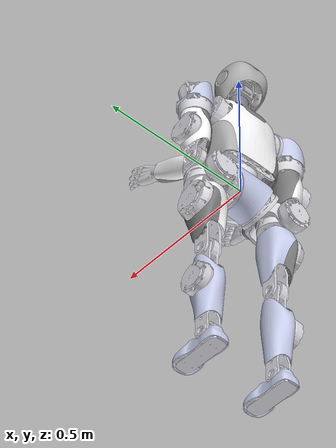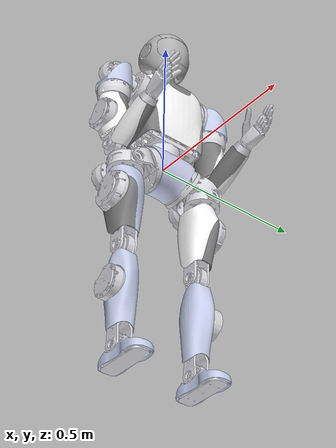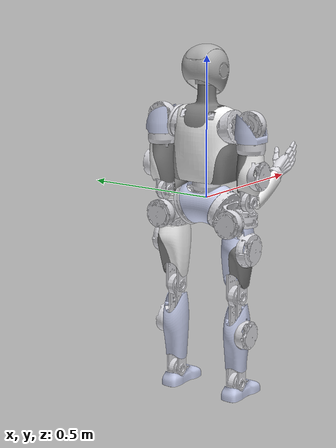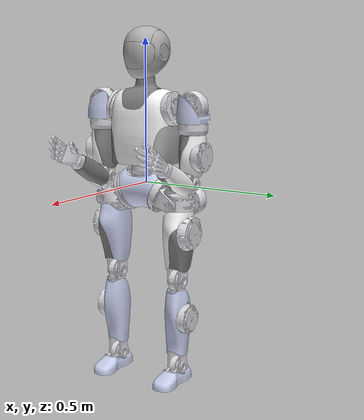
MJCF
<mujoco model="ILIA">
  <compiler angle="radian"/>

  <asset>
    <mesh name="base" content_type="model/stl" file="meshes/base.STL"/>
    <mesh name="right_hip_first_link" content_type="model/stl" file="meshes/right_hip_first_link.STL"/>
    <mesh name="right_hip_second_link" content_type="model/stl" file="meshes/right_hip_second_link.STL"/>
    <mesh name="right_thigh_link" content_type="model/stl" file="meshes/right_thigh_link.STL"/>
    <mesh name="right_shank_link" content_type="model/stl" file="meshes/right_shank_link.STL"/>
    <mesh name="right_foot_link" content_type="model/stl" file="meshes/right_foot_link.STL"/>
    <mesh name="right_foot_shell" content_type="model/stl" file="meshes/right_foot_shell.STL"/>
    <mesh name="right_shank_shell" content_type="model/stl" file="meshes/right_shank_shell.STL"/>
    <mesh name="right_thigh_shell_first" content_type="model/stl" file="meshes/right_thigh_shell_first.STL"/>
    <mesh name="right_thigh_shell_second" content_type="model/stl" file="meshes/right_thigh_shell_second.STL"/>
    <mesh name="left_hip_first_link" content_type="model/stl" file="meshes/left_hip_first_link.STL"/>
    <mesh name="left_hip_second_link" content_type="model/stl" file="meshes/left_hip_second_link.STL"/>
    <mesh name="left_thigh_link" content_type="model/stl" file="meshes/left_thigh_link.STL"/>
    <mesh name="left_shank_link" content_type="model/stl" file="meshes/left_shank_link.STL"/>
    <mesh name="left_foot_link" content_type="model/stl" file="meshes/left_foot_link.STL"/>
    <mesh name="left_foot_shell" content_type="model/stl" file="meshes/left_foot_shell.STL"/>
    <mesh name="left_shank_shell" content_type="model/stl" file="meshes/left_shank_shell.STL"/>
    <mesh name="left_thigh_first_shell" content_type="model/stl" file="meshes/left_thigh_first_shell.STL"/>
    <mesh name="left_thigh_second_shell" content_type="model/stl" file="meshes/left_thigh_second_shell.STL"/>
    <mesh name="torso_link" content_type="model/stl" file="meshes/torso_link.STL"/>
    <mesh name="right_shoulder_first_link" content_type="model/stl" file="meshes/right_shoulder_first_link.STL"/>
    <mesh name="right_shoulder_second_link" content_type="model/stl" file="meshes/right_shoulder_second_link.STL"/>
    <mesh name="right_upper_arm_link" content_type="model/stl" file="meshes/right_upper_arm_link.STL"/>
    <mesh name="right_fore_arm_link" content_type="model/stl" file="meshes/right_fore_arm_link.STL"/>
    <mesh name="right_fore_arm_first_shell" content_type="model/stl" file="meshes/right_fore_arm_first_shell.STL"/>
    <mesh name="right_fore_arm_second_shell" content_type="model/stl" file="meshes/right_fore_arm_second_shell.STL"/>
    <mesh name="right_upper_arm_first_shell" content_type="model/stl" file="meshes/right_upper_arm_first_shell.STL"/>
    <mesh name="right_upper_arm_second_shell" content_type="model/stl" file="meshes/right_upper_arm_second_shell.STL"/>
    <mesh name="right_shoulder_shell" content_type="model/stl" file="meshes/right_shoulder_shell.STL"/>
    <mesh name="left_shoulder_first_link" content_type="model/stl" file="meshes/left_shoulder_first_link.STL"/>
    <mesh name="left_shoulder_second_link" content_type="model/stl" file="meshes/left_shoulder_second_link.STL"/>
    <mesh name="left_upper_arm_link" content_type="model/stl" file="meshes/left_upper_arm_link.STL"/>
    <mesh name="left_fore_arm_link" content_type="model/stl" file="meshes/left_fore_arm_link.STL"/>
    <mesh name="left_fore_arm_first_shell" content_type="model/stl" file="meshes/left_fore_arm_first_shell.STL"/>
    <mesh name="left_fore_arm_second_shell" content_type="model/stl" file="meshes/left_fore_arm_second_shell.STL"/>
    <mesh name="left_upper_arm_first_shell" content_type="model/stl" file="meshes/left_upper_arm_first_shell.STL"/>
    <mesh name="left_upper_arm_second_shell" content_type="model/stl" file="meshes/left_upper_arm_second_shell.STL"/>
    <mesh name="left_shoulder_shell" content_type="model/stl" file="meshes/left_shoulder_shell.STL"/>
    <mesh name="neck_link" content_type="model/stl" file="meshes/neck_link.STL"/>
    <mesh name="head_link" content_type="model/stl" file="meshes/head_link.STL"/>
    <mesh name="head_shell_first" content_type="model/stl" file="meshes/head_shell_first.STL"/>
    <mesh name="head_shell_second" content_type="model/stl" file="meshes/head_shell_second.STL"/>
    <mesh name="torso_shell_first" content_type="model/stl" file="meshes/torso_shell_first.STL"/>
    <mesh name="torso_shell_second" content_type="model/stl" file="meshes/torso_shell_second.STL"/>
    <mesh name="torso_shell_third" content_type="model/stl" file="meshes/torso_shell_third.STL"/>
    <mesh name="torso_shell_forth" content_type="model/stl" file="meshes/torso_shell_forth.STL"/>
    <mesh name="base_shell" content_type="model/stl" file="meshes/base_shell.STL"/>
  </asset>

  <worldbody>
    <geom type="mesh" rgba="0.86667 0.86667 0.8902 1" mesh="base"/>
    <geom type="mesh" rgba="0.79216 0.81961 0.93333 1" mesh="base_shell"/>
    <body name="right_hip_first_link" pos="0 -0.0785413 -0.0366244" quat="0.976296 0.21644 0 0">
      <inertial pos="-0.0185878 -0.0410634 0.00213316" quat="-0.065532 0.681824 0.207094 0.698523" mass="0.991517" diaginertia="0.004394 0.00412797 0.00135917"/>
      <joint name="right_hip_pitch_joint" pos="0 0 0" axis="0 1 0" range="-3.14 3.14" actuatorfrcrange="-72 72"/>
      <geom type="mesh" rgba="0.866667 0.866667 0.890196 1" mesh="right_hip_first_link"/>
      <body name="right_hip_second_link" pos="0.00845 -0.071 0.005" quat="0.976296 -0.21644 0 0">
        <inertial pos="7.66651e-05 0.00045255 0.00216265" quat="0.012615 0.700902 -0.0217312 0.712815" mass="0.887392" diaginertia="0.00206607 0.00142636 0.00106256"/>
        <joint name="right_hip_roll_joint" pos="0 0 0" axis="1 0 0" range="-2.61 0.26" actuatorfrcrange="-33.6 33.6"/>
        <geom type="mesh" rgba="0.866667 0.866667 0.890196 1" mesh="right_hip_second_link"/>
        <body name="right_thigh_link">
          <inertial pos="-0.00765492 0.00189636 -0.122216" quat="0.994625 0.0287568 8.17129e-05 0.0994689" mass="2.95753" diaginertia="0.0184101 0.0181464 0.00424288"/>
          <joint name="right_hip_yaw_joint" pos="0 0 0" axis="0 0 1" range="-3.14 3.14" actuatorfrcrange="-33.6 33.6"/>
          <geom type="mesh" rgba="0.866667 0.866667 0.890196 1" mesh="right_thigh_link"/>
          <geom type="mesh" rgba="0.792157 0.819608 0.933333 1" mesh="right_thigh_shell_first"/>
          <geom type="mesh" rgba="0.501961 0.501961 0.501961 1" mesh="right_thigh_shell_second"/>
          <body name="right_shank_link" pos="-0.0085 0.013 -0.2775">
            <inertial pos="0.000396455 -0.00529441 -0.119233" quat="0.873755 -0.00274468 0.00346298 0.486347" mass="2.34451" diaginertia="0.0252276 0.025185 0.00219025"/>
            <joint name="right_knee_joint" pos="0 0 0" axis="0 1 0" range="0 2.18" actuatorfrcrange="-144 144"/>
            <geom type="mesh" rgba="0.866667 0.866667 0.890196 1" mesh="right_shank_link"/>
            <geom type="mesh" rgba="0.792157 0.819608 0.933333 1" mesh="right_shank_shell"/>
            <body name="right_foot_link" pos="0 2.5e-05 -0.321">
              <inertial pos="0.0211655 3.48316e-05 -0.0260157" quat="0.435989 0.556721 0.558325 0.433876" mass="0.847227" diaginertia="0.00202932 0.00175057 0.000616923"/>
              <joint name="right_ankle_pitch_joint" pos="0 0 0" axis="0 1 0" range="-1.117 1.029" actuatorfrcrange="-67.2 67.2"/>
              <geom type="mesh" rgba="0.866667 0.866667 0.890196 1" mesh="right_foot_link"/>
              <geom type="mesh" rgba="0.792157 0.819608 0.933333 1" mesh="right_foot_shell"/>
            </body>
          </body>
        </body>
      </body>
    </body>
    <body name="left_hip_first_link" pos="0 0.0785413 -0.0366244" quat="0.976296 -0.21644 0 0">
      <inertial pos="-0.018589 0.0409781 0.00203984" quat="0.0714485 0.68277 -0.200994 0.6988" mass="0.991505" diaginertia="0.00440444 0.00410871 0.00135658"/>
      <joint name="left_hip_pitch_joint" pos="0 0 0" axis="0 1 0" range="-3.14 3.14" actuatorfrcrange="-72 72"/>
      <geom type="mesh" rgba="0.866667 0.866667 0.890196 1" mesh="left_hip_first_link"/>
      <body name="left_hip_second_link" pos="0.00845 0.071 0.005" quat="0.976296 0.21644 0 0">
        <inertial pos="-0.000336191 -0.000866874 0.00216265" quat="-0.00837255 0.703105 0.0241784 0.710626" mass="0.887392" diaginertia="0.00206553 0.00143284 0.00105546"/>
        <joint name="left_hip_roll_joint" pos="0 0 0" axis="1 0 0" range="-0.26 2.61" actuatorfrcrange="-33.6 33.6"/>
        <geom type="mesh" rgba="0.866667 0.866667 0.890196 1" mesh="left_hip_second_link"/>
        <body name="left_thigh_link">
          <inertial pos="-0.00743842 -0.00189428 -0.121689" quat="0.989097 -0.0307788 -0.0005387 -0.144012" mass="2.9572" diaginertia="0.0184701 0.018203 0.00424822"/>
          <joint name="left_hip_yaw_joint" pos="0 0 0" axis="0 0 1" range="-3.14 3.14" actuatorfrcrange="-33.6 33.6"/>
          <geom type="mesh" rgba="0.866667 0.866667 0.890196 1" mesh="left_thigh_link"/>
          <geom type="mesh" rgba="1 1 1 1" mesh="left_thigh_first_shell"/>
          <geom type="mesh" rgba="0.501961 0.501961 0.501961 1" mesh="left_thigh_second_shell"/>
          <body name="left_shank_link" pos="-0.0085 -0.013 -0.2775">
            <inertial pos="0.000511859 0.00529621 -0.119118" quat="0.429242 0.00306911 -0.00274607 0.90318" mass="2.34469" diaginertia="0.0252331 0.0251675 0.00218523"/>
            <joint name="left_knee_joint" pos="0 0 0" axis="0 1 0" range="0 2.18" actuatorfrcrange="-144 144"/>
            <geom type="mesh" rgba="0.866667 0.866667 0.890196 1" mesh="left_shank_link"/>
            <geom type="mesh" rgba="0.792157 0.819608 0.933333 1" mesh="left_shank_shell"/>
            <body name="left_foot_link" pos="0 2.5e-05 -0.321">
              <inertial pos="0.021159 -7.0841e-05 -0.0259933" quat="0.434107 0.558153 0.556902 0.435748" mass="0.846604" diaginertia="0.00202744 0.00174915 0.000616295"/>
              <joint name="left_ankle_pitch_joint" pos="0 0 0" axis="0 1 0" range="-1.117 1.029" actuatorfrcrange="-67.2 67.2"/>
              <geom type="mesh" rgba="0.866667 0.866667 0.890196 1" mesh="left_foot_link"/>
              <geom type="mesh" rgba="0.792157 0.819608 0.933333 1" mesh="left_foot_shell"/>
            </body>
          </body>
        </body>
      </body>
    </body>
    <body name="torso_link" pos="0 0 0.069175">
      <inertial pos="0.00111452 -0.0185307 0.149386" quat="0.570125 0.816157 -0.0731606 0.0590991" mass="7.87891" diaginertia="0.152649 0.123868 0.0679746"/>
      <joint name="waist_yaw_joint" pos="0 0 0" axis="0 0 1" range="-3.14 3.14" actuatorfrcrange="-33.6 33.6"/>
      <geom type="mesh" rgba="0.866667 0.866667 0.890196 1" mesh="torso_link"/>
      <geom pos="0 0 0.2786" type="mesh" rgba="0.698039 0.698039 0.698039 1" mesh="neck_link"/>
      <geom pos="-0.005 -0.00089057 0.3566" quat="1 0 0 0" type="mesh" rgba="0.698039 0.698039 0.698039 1" mesh="head_link"/>
      <geom pos="-0.005 -0.00089057 0.3566" quat="1 0 0 0" type="mesh" rgba="0.698039 0.698039 0.698039 1" mesh="head_shell_first"/>
      <geom pos="-0.005 -0.00089057 0.3566" quat="1 0 0 0" type="mesh" rgba="0.698039 0.698039 0.698039 1" mesh="head_shell_second"/>
      <geom type="mesh" rgba="0.698039 0.698039 0.698039 1" mesh="torso_shell_first"/>
      <geom type="mesh" rgba="0.501961 0.501961 0.501961 1" mesh="torso_shell_second"/>
      <geom type="mesh" rgba="0.501961 0.501961 0.501961 1" mesh="torso_shell_third"/>
      <geom type="mesh" rgba="1 1 1 1" mesh="torso_shell_forth"/>
      <body name="right_shoulder_first_link" pos="0 -0.123486 0.193881" quat="0.996195 -0.0871557 0 0">
        <inertial pos="-0.00977427 -0.0481215 -0.00120749" quat="0.718183 0.692571 -0.0322363 -0.0593186" mass="0.848057" diaginertia="0.00153179 0.00121486 0.000758901"/>
        <joint name="right_shoulder_pitch_joint" pos="0 0 0" axis="0 1 0" range="-3.14 3.14" actuatorfrcrange="-33.6 33.6"/>
        <geom type="mesh" rgba="0.866667 0.866667 0.890196 1" mesh="right_shoulder_first_link"/>
        <body name="right_shoulder_second_link" pos="0 -0.067 0" quat="0.996195 0.0871557 0 0">
          <inertial pos="-0.00349774 -0.00175069 -0.0466605" quat="0.570168 0.377069 0.47409 0.554947" mass="0.891269" diaginertia="0.00181597 0.00157645 0.00130083"/>
          <joint name="right_shoulder_roll_joint" pos="0 0 0" axis="1 0 0" range="-3.14 0" actuatorfrcrange="-33.6 33.6"/>
          <geom type="mesh" rgba="0.866667 0.866667 0.890196 1" mesh="right_shoulder_second_link"/>
          <geom type="mesh" rgba="0.792157 0.819608 0.933333 1" mesh="right_shoulder_shell"/>
          <body name="right_upper_arm_link" pos="-0.00675 0 -0.0975">
            <inertial pos="0.000371956 -0.00340709 -0.0657227" quat="0.997097 -0.0271357 0.00372271 0.0710511" mass="1.50765" diaginertia="0.00445746 0.00422719 0.00187321"/>
            <joint name="right_shoulder_yaw_joint" pos="0 0 0" axis="0 0 1" range="-3.14 3.14" actuatorfrcrange="-33.6 33.6"/>
            <geom type="mesh" rgba="0.866667 0.866667 0.890196 1" mesh="right_upper_arm_link"/>
            <geom type="mesh" rgba="1 1 1 1" mesh="right_upper_arm_first_shell"/>
            <geom type="mesh" rgba="0.501961 0.501961 0.501961 1" mesh="right_upper_arm_second_shell"/>
            <body name="right_fore_arm_link" pos="0 0.00950001 -0.17">
              <inertial pos="0.134998 -0.00065326 0.0579008" quat="0.664371 0.331098 0.407481 0.531925" mass="0.836799" diaginertia="0.00847824 0.00836636 0.000418011"/>
              <joint name="right_elbow_joint" pos="0 0 0" axis="0 1 0" range="0 2.79" actuatorfrcrange="-45.36 45.36"/>
              <geom type="mesh" rgba="0.866667 0.866667 0.890196 1" mesh="right_fore_arm_link"/>
              <geom type="mesh" rgba="1 1 1 1" mesh="right_fore_arm_first_shell"/>
              <geom type="mesh" rgba="0.501961 0.501961 0.501961 1" mesh="right_fore_arm_second_shell"/>
            </body>
          </body>
        </body>
      </body>
      <body name="left_shoulder_first_link" pos="0 0.123486 0.193881" quat="0.996195 0.0871557 0 0">
        <inertial pos="-0.00984732 0.0469923 0.000203012" quat="0.720647 0.690248 0.0285561 0.0584017" mass="0.853027" diaginertia="0.00150377 0.00117985 0.000770737"/>
        <joint name="left_shoulder_pitch_joint" pos="0 0 0" axis="0 1 0" range="-3.14 3.14" actuatorfrcrange="-33.6 33.6"/>
        <geom type="mesh" rgba="0.866667 0.866667 0.890196 1" mesh="left_shoulder_first_link"/>
        <body name="left_shoulder_second_link" pos="0 0.067 0" quat="0.996195 -0.0871557 0 0">
          <inertial pos="-0.003462 -0.00148046 -0.0466592" quat="0.518006 0.427218 0.437009 0.598479" mass="0.890045" diaginertia="0.00181259 0.00157515 0.00130059"/>
          <joint name="left_shoulder_roll_joint" pos="0 0 0" axis="1 0 0" range="0 3.14" actuatorfrcrange="-33.6 33.6"/>
          <geom type="mesh" rgba="0.866667 0.866667 0.890196 1" mesh="left_shoulder_second_link"/>
          <geom type="mesh" rgba="0.792157 0.819608 0.933333 1" mesh="left_shoulder_shell"/>
          <body name="left_upper_arm_link" pos="-0.00675 0 -0.0975">
            <inertial pos="-0.000190678 0.00340699 -0.0659018" quat="0.999421 0.0299941 -0.00339417 0.0157311" mass="1.50766" diaginertia="0.00443421 0.00423706 0.00189466"/>
            <joint name="left_shoulder_yaw_joint" pos="0 0 0" axis="0 0 1" range="-3.14 3.14" actuatorfrcrange="-33.6 33.6"/>
            <geom type="mesh" rgba="0.866667 0.866667 0.890196 1" mesh="left_upper_arm_link"/>
            <geom type="mesh" rgba="1 1 1 1" mesh="left_upper_arm_first_shell"/>
            <geom type="mesh" rgba="0.501961 0.501961 0.501961 1" mesh="left_upper_arm_second_shell"/>
            <body name="left_fore_arm_link" pos="0 -0.0095 -0.17">
              <inertial pos="0.134811 0.000472836 0.0578265" quat="0.535217 0.405715 0.333297 0.661703" mass="0.835881" diaginertia="0.00845527 0.00834522 0.000417488"/>
              <joint name="left_elbow_joint" pos="0 0 0" axis="0 1 0" range="0 2.79" actuatorfrcrange="-45.36 45.36"/>
              <geom type="mesh" rgba="0.866667 0.866667 0.890196 1" mesh="left_fore_arm_link"/>
              <geom type="mesh" rgba="1 1 1 1" mesh="left_fore_arm_first_shell"/>
              <geom type="mesh" rgba="0.501961 0.501961 0.501961 1" mesh="left_fore_arm_second_shell"/>
            </body>
          </body>
        </body>
      </body>
    </body>
  </worldbody>
</mujoco>
